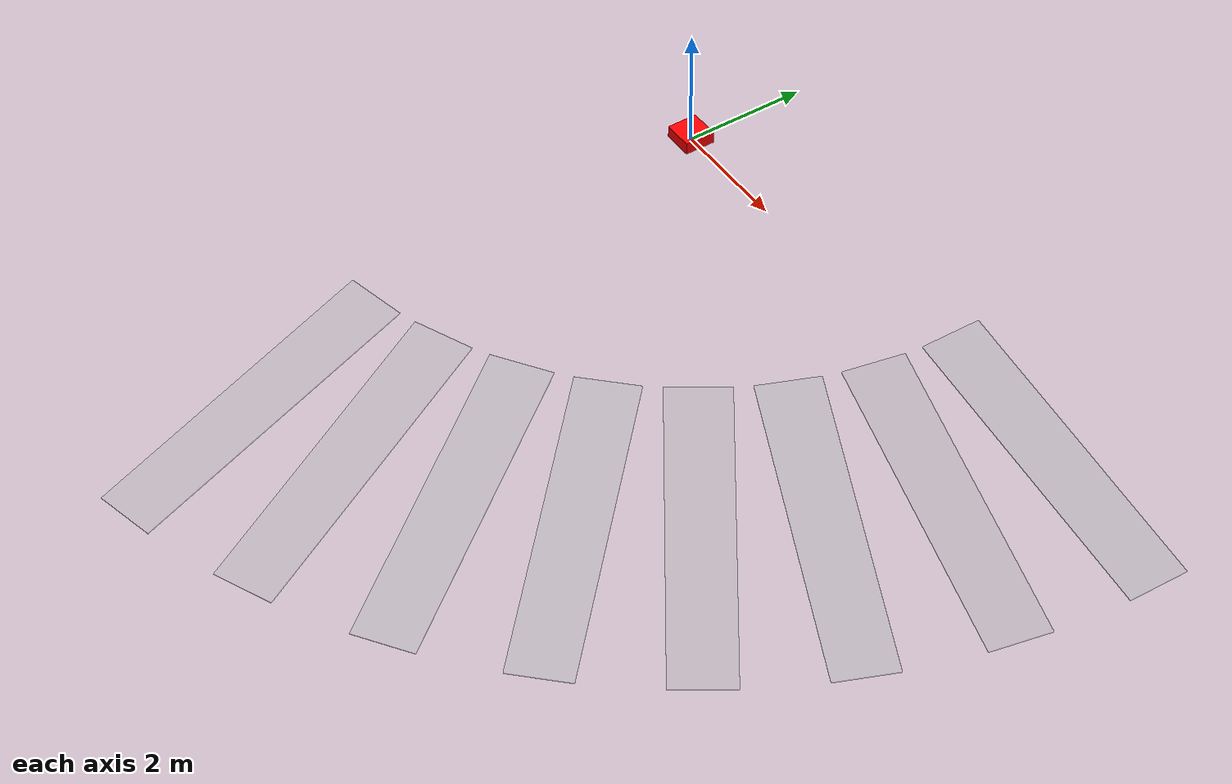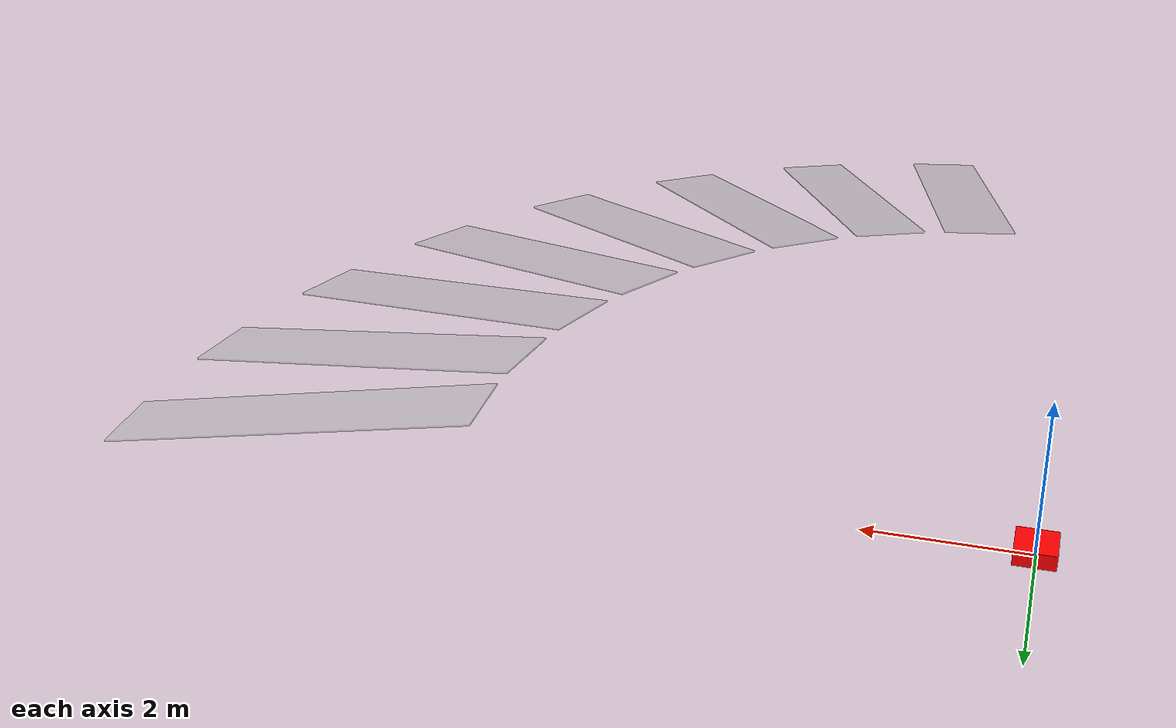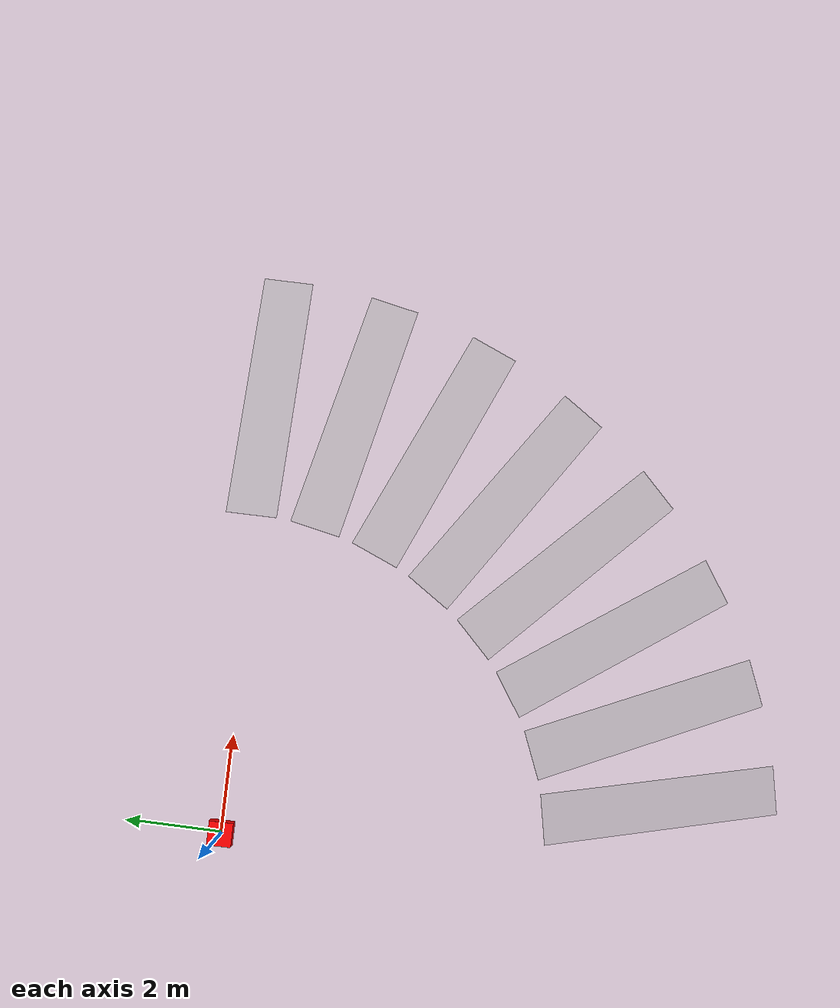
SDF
<sdf version="1.7">
 <world name="friction_pyramid">
  <model name="groundplane">
   <static>1</static>
   <link name="link">
    <collision name="collision">
     <geometry><plane><normal>0 0 1</normal><size>1 1</size></plane></geometry>
    </collision>
   </link>
  </model>
  <model name="boxes_ramp_0">
   <pose relative_to="groundplane">9.0 0.0 0.5 0 0.2 0.0</pose>
   <static>1</static>
   <link name="link">
    <collision name="collision">
     <pose relative_to="link">0 0 0 0 0 0</pose>
     <geometry><box><size>5 1 0.02</size></box></geometry>
     <surface>
      <contact><ode><kp>1e+06</kp><kd>1</kd></ode></contact>
      <friction><ode><mu>1</mu><mu2>1</mu2></ode></friction>
     </surface>
    </collision>
    <visual name="visual">
     <geometry><box><size>5 1 0.02</size></box></geometry>
     <material>
      <ambient>.3 .3 .3  0.5</ambient>
      <diffuse>.7 .7 .7  0.5</diffuse>
      <specular>0.01 0.01 0.01 1.000000</specular>
     </material>
    </visual>
    <gravity>0</gravity>
   </link>
  </model>
  <model name="boxes_ramp_25">
   <pose relative_to="groundplane">1.7558128981451548 -8.827067523629074 0.5 0 0.2 4.908738521234052</pose>
   <static>1</static>
   <link name="link">
    <collision name="collision">
     <pose relative_to="link">0 0 0 0 0 0</pose>
     <geometry><box><size>5 1 0.02</size></box></geometry>
     <surface>
      <contact><ode><kp>1e+06</kp><kd>1</kd></ode></contact>
      <friction><ode><mu>1</mu><mu2>1</mu2></ode></friction>
     </surface>
    </collision>
    <visual name="visual">
     <geometry><box><size>5 1 0.02</size></box></geometry>
     <material>
      <ambient>.3 .3 .3  0.5</ambient>
      <diffuse>.7 .7 .7  0.5</diffuse>
      <specular>0.01 0.01 0.01 1.000000</specular>
     </material>
    </visual>
    <gravity>0</gravity>
   </link>
  </model>
  <model name="boxes_ramp_26">
   <pose relative_to="groundplane">3.44415089128581 -8.31491579260158 0.5 0 0.2 5.105088062083414</pose>
   <static>1</static>
   <link name="link">
    <collision name="collision">
     <pose relative_to="link">0 0 0 0 0 0</pose>
     <geometry><box><size>5 1 0.02</size></box></geometry>
     <surface>
      <contact><ode><kp>1e+06</kp><kd>1</kd></ode></contact>
      <friction><ode><mu>1</mu><mu2>1</mu2></ode></friction>
     </surface>
    </collision>
    <visual name="visual">
     <geometry><box><size>5 1 0.02</size></box></geometry>
     <material>
      <ambient>.3 .3 .3  0.5</ambient>
      <diffuse>.7 .7 .7  0.5</diffuse>
      <specular>0.01 0.01 0.01 1.000000</specular>
     </material>
    </visual>
    <gravity>0</gravity>
   </link>
  </model>
  <model name="boxes_ramp_27">
   <pose relative_to="groundplane">5.000132097176417 -7.4832265107229095 0.5 0 0.2 5.301437602932776</pose>
   <static>1</static>
   <link name="link">
    <collision name="collision">
     <pose relative_to="link">0 0 0 0 0 0</pose>
     <geometry><box><size>5 1 0.02</size></box></geometry>
     <surface>
      <contact><ode><kp>1e+06</kp><kd>1</kd></ode></contact>
      <friction><ode><mu>1</mu><mu2>1</mu2></ode></friction>
     </surface>
    </collision>
    <visual name="visual">
     <geometry><box><size>5 1 0.02</size></box></geometry>
     <material>
      <ambient>.3 .3 .3  0.5</ambient>
      <diffuse>.7 .7 .7  0.5</diffuse>
      <specular>0.01 0.01 0.01 1.000000</specular>
     </material>
    </visual>
    <gravity>0</gravity>
   </link>
  </model>
  <model name="boxes_ramp_28">
   <pose relative_to="groundplane">6.363961030678926 -6.363961030678929 0.5 0 0.2 5.497787143782138</pose>
   <static>1</static>
   <link name="link">
    <collision name="collision">
     <pose relative_to="link">0 0 0 0 0 0</pose>
     <geometry><box><size>5 1 0.02</size></box></geometry>
     <surface>
      <contact><ode><kp>1e+06</kp><kd>1</kd></ode></contact>
      <friction><ode><mu>1</mu><mu2>1</mu2></ode></friction>
     </surface>
    </collision>
    <visual name="visual">
     <geometry><box><size>5 1 0.02</size></box></geometry>
     <material>
      <ambient>.3 .3 .3  0.5</ambient>
      <diffuse>.7 .7 .7  0.5</diffuse>
      <specular>0.01 0.01 0.01 1.000000</specular>
     </material>
    </visual>
    <gravity>0</gravity>
   </link>
  </model>
  <model name="boxes_ramp_29">
   <pose relative_to="groundplane">7.483226510722907 -5.00013209717642 0.5 0 0.2 5.6941366846315</pose>
   <static>1</static>
   <link name="link">
    <collision name="collision">
     <pose relative_to="link">0 0 0 0 0 0</pose>
     <geometry><box><size>5 1 0.02</size></box></geometry>
     <surface>
      <contact><ode><kp>1e+06</kp><kd>1</kd></ode></contact>
      <friction><ode><mu>1</mu><mu2>1</mu2></ode></friction>
     </surface>
    </collision>
    <visual name="visual">
     <geometry><box><size>5 1 0.02</size></box></geometry>
     <material>
      <ambient>.3 .3 .3  0.5</ambient>
      <diffuse>.7 .7 .7  0.5</diffuse>
      <specular>0.01 0.01 0.01 1.000000</specular>
     </material>
    </visual>
    <gravity>0</gravity>
   </link>
  </model>
  <model name="boxes_ramp_30">
   <pose relative_to="groundplane">8.314915792601578 -3.4441508912858136 0.5 0 0.2 5.890486225480862</pose>
   <static>1</static>
   <link name="link">
    <collision name="collision">
     <pose relative_to="link">0 0 0 0 0 0</pose>
     <geometry><box><size>5 1 0.02</size></box></geometry>
     <surface>
      <contact><ode><kp>1e+06</kp><kd>1</kd></ode></contact>
      <friction><ode><mu>1</mu><mu2>1</mu2></ode></friction>
     </surface>
    </collision>
    <visual name="visual">
     <geometry><box><size>5 1 0.02</size></box></geometry>
     <material>
      <ambient>.3 .3 .3  0.5</ambient>
      <diffuse>.7 .7 .7  0.5</diffuse>
      <specular>0.01 0.01 0.01 1.000000</specular>
     </material>
    </visual>
    <gravity>0</gravity>
   </link>
  </model>
  <model name="boxes_ramp_31">
   <pose relative_to="groundplane">8.827067523629072 -1.7558128981451584 0.5 0 0.2 6.086835766330224</pose>
   <static>1</static>
   <link name="link">
    <collision name="collision">
     <pose relative_to="link">0 0 0 0 0 0</pose>
     <geometry><box><size>5 1 0.02</size></box></geometry>
     <surface>
      <contact><ode><kp>1e+06</kp><kd>1</kd></ode></contact>
      <friction><ode><mu>1</mu><mu2>1</mu2></ode></friction>
     </surface>
    </collision>
    <visual name="visual">
     <geometry><box><size>5 1 0.02</size></box></geometry>
     <material>
      <ambient>.3 .3 .3  0.5</ambient>
      <diffuse>.7 .7 .7  0.5</diffuse>
      <specular>0.01 0.01 0.01 1.000000</specular>
     </material>
    </visual>
    <gravity>0</gravity>
   </link>
  </model>
  <model name="boxes_mu2_box_18">
   <pose relative_to="boxes_mu2_ramp_18">0 0 0.1 0 0 0</pose>
   <link name="link_1">
    <inertial>
     <mass>1</mass>
     <inertia>
      <ixx>0.02416666666666667</ixx>
      <ixy>0</ixy>
      <ixz>0</ixz>
      <iyy>0.02416666666666667</iyy>
      <iyz>0</iyz>
      <izz>0.041666666666666664</izz>
     </inertia>
    </inertial>
    <collision name="collision">
     <geometry><box><size>0.5 0.5 0.2</size></box></geometry>
     <surface><friction><ode><mu>0.1</mu><mu2>0.5</mu2></ode></friction></surface>
    </collision>
    <visual name="visual">
     <geometry><box><size>0.5 0.5 0.2</size></box></geometry>
     <material><ambient>1 0 0 1</ambient><diffuse>1 0 0 1</diffuse><specular>0.1 0.1 0.1 1</specular></material>
    </visual>
   </link>
  </model>
  <model name="boxes_mu2_box_19">
   <pose relative_to="boxes_mu2_ramp_19">0 0 0.1 0 0 0</pose>
   <link name="link_1">
    <inertial>
     <mass>1</mass>
     <inertia>
      <ixx>0.02416666666666667</ixx>
      <ixy>0</ixy>
      <ixz>0</ixz>
      <iyy>0.02416666666666667</iyy>
      <iyz>0</iyz>
      <izz>0.041666666666666664</izz>
     </inertia>
    </inertial>
    <collision name="collision">
     <geometry><box><size>0.5 0.5 0.2</size></box></geometry>
     <surface><friction><ode><mu>0.1</mu><mu2>0.5</mu2></ode></friction></surface>
    </collision>
    <visual name="visual">
     <geometry><box><size>0.5 0.5 0.2</size></box></geometry>
     <material><ambient>1 0 0 1</ambient><diffuse>1 0 0 1</diffuse><specular>0.1 0.1 0.1 1</specular></material>
    </visual>
   </link>
  </model>
  <model name="boxes_mu2_box_20">
   <pose relative_to="boxes_mu2_ramp_20">0 0 0.1 0 0 0</pose>
   <link name="link_1">
    <inertial>
     <mass>1</mass>
     <inertia>
      <ixx>0.02416666666666667</ixx>
      <ixy>0</ixy>
      <ixz>0</ixz>
      <iyy>0.02416666666666667</iyy>
      <iyz>0</iyz>
      <izz>0.041666666666666664</izz>
     </inertia>
    </inertial>
    <collision name="collision">
     <geometry><box><size>0.5 0.5 0.2</size></box></geometry>
     <surface><friction><ode><mu>0.1</mu><mu2>0.5</mu2></ode></friction></surface>
    </collision>
    <visual name="visual">
     <geometry><box><size>0.5 0.5 0.2</size></box></geometry>
     <material><ambient>1 0 0 1</ambient><diffuse>1 0 0 1</diffuse><specular>0.1 0.1 0.1 1</specular></material>
    </visual>
   </link>
  </model>
  <model name="boxes_mu2_box_21">
   <pose relative_to="boxes_mu2_ramp_21">0 0 0.1 0 0 0</pose>
   <link name="link_1">
    <inertial>
     <mass>1</mass>
     <inertia>
      <ixx>0.02416666666666667</ixx>
      <ixy>0</ixy>
      <ixz>0</ixz>
      <iyy>0.02416666666666667</iyy>
      <iyz>0</iyz>
      <izz>0.041666666666666664</izz>
     </inertia>
    </inertial>
    <collision name="collision">
     <geometry><box><size>0.5 0.5 0.2</size></box></geometry>
     <surface><friction><ode><mu>0.1</mu><mu2>0.5</mu2></ode></friction></surface>
    </collision>
    <visual name="visual">
     <geometry><box><size>0.5 0.5 0.2</size></box></geometry>
     <material><ambient>1 0 0 1</ambient><diffuse>1 0 0 1</diffuse><specular>0.1 0.1 0.1 1</specular></material>
    </visual>
   </link>
  </model>
  <model name="boxes_mu2_box_22">
   <pose relative_to="boxes_mu2_ramp_22">0 0 0.1 0 0 0</pose>
   <link name="link_1">
    <inertial>
     <mass>1</mass>
     <inertia>
      <ixx>0.02416666666666667</ixx>
      <ixy>0</ixy>
      <ixz>0</ixz>
      <iyy>0.02416666666666667</iyy>
      <iyz>0</iyz>
      <izz>0.041666666666666664</izz>
     </inertia>
    </inertial>
    <collision name="collision">
     <geometry><box><size>0.5 0.5 0.2</size></box></geometry>
     <surface><friction><ode><mu>0.1</mu><mu2>0.5</mu2></ode></friction></surface>
    </collision>
    <visual name="visual">
     <geometry><box><size>0.5 0.5 0.2</size></box></geometry>
     <material><ambient>1 0 0 1</ambient><diffuse>1 0 0 1</diffuse><specular>0.1 0.1 0.1 1</specular></material>
    </visual>
   </link>
  </model>
 </world>
</sdf>
